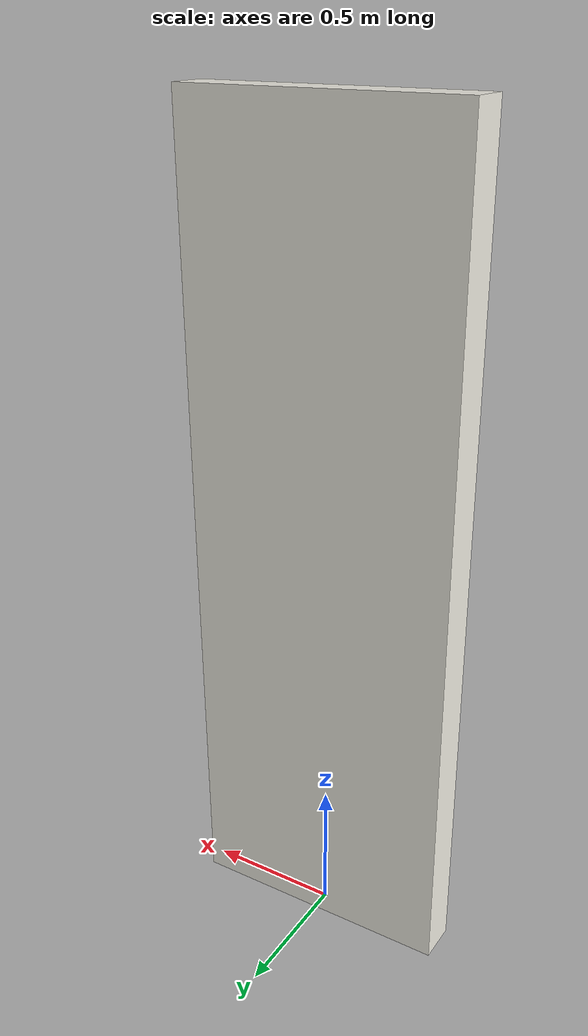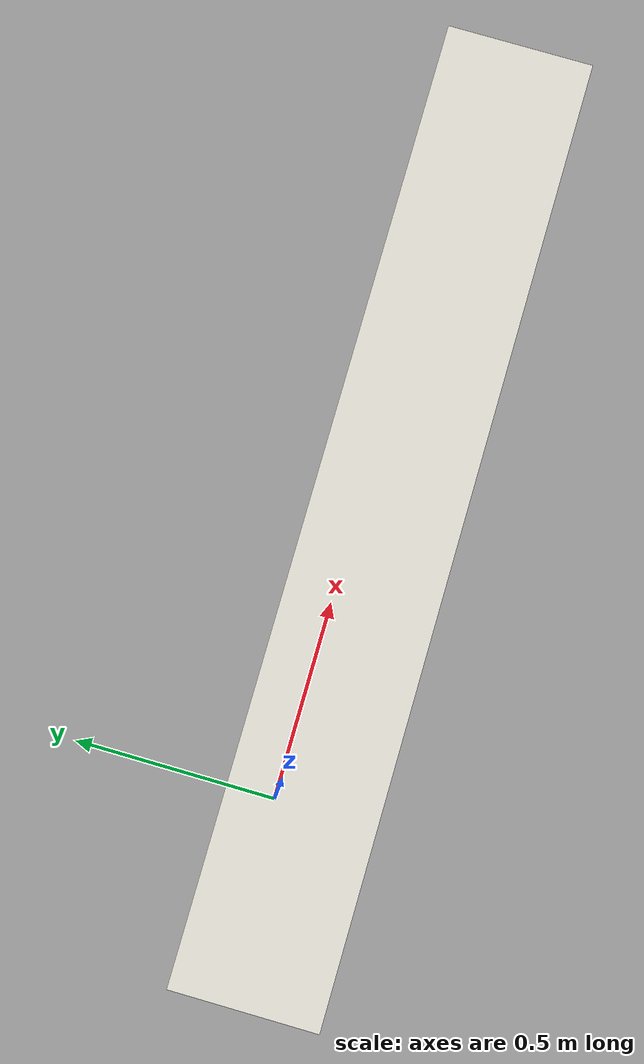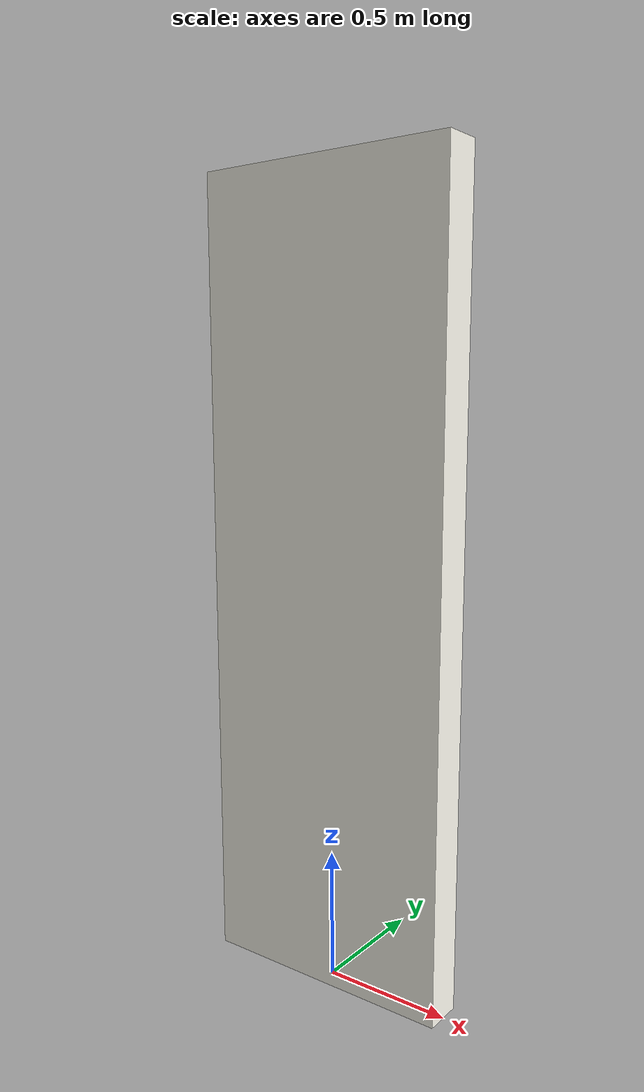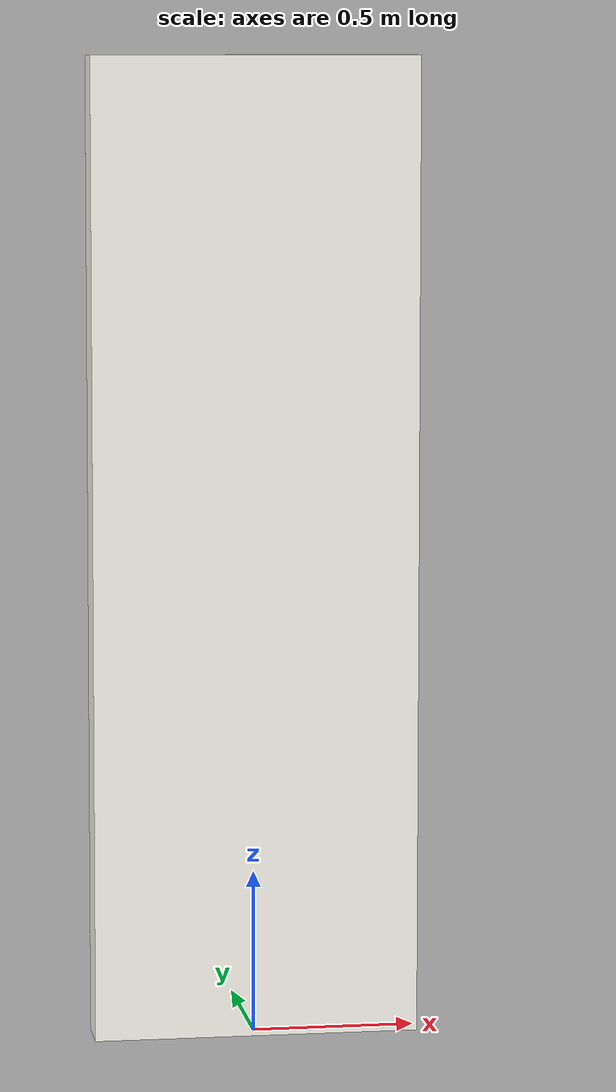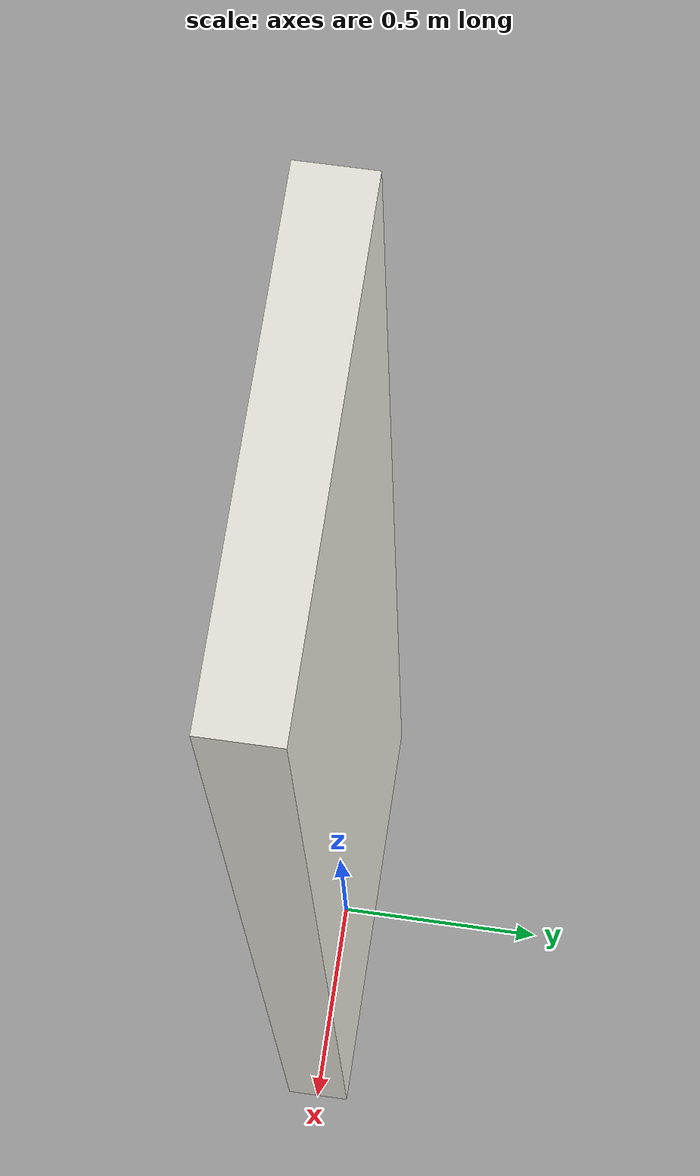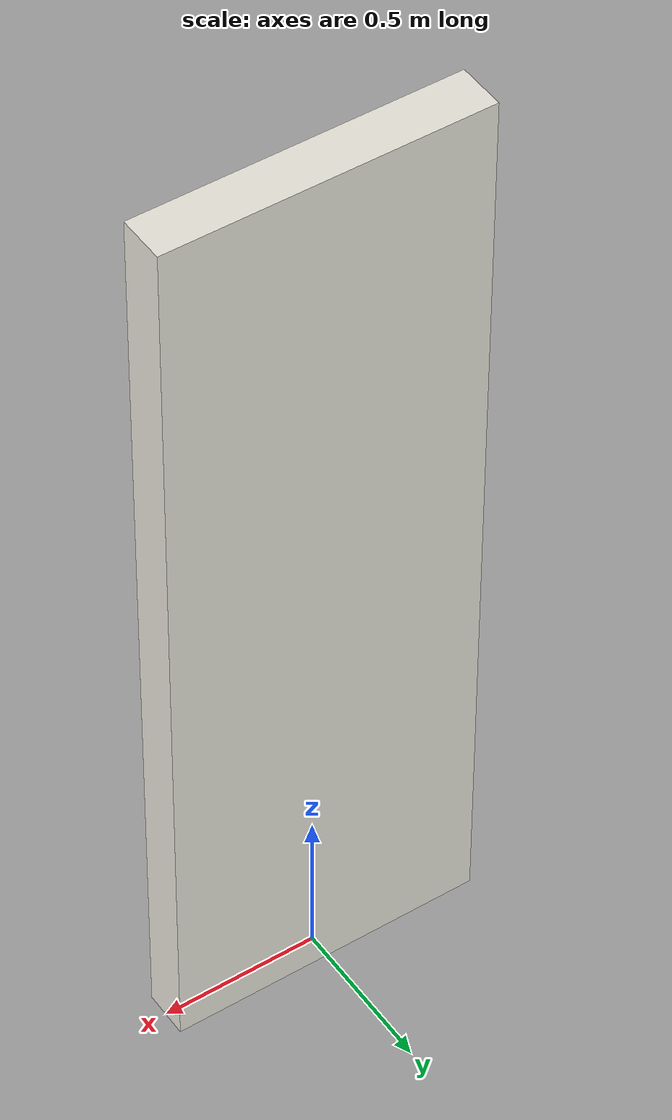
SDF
<?xml version="1.0" ?>
<sdf version="1.6">
  <model name="wall_segment">
    <static>true</static>

    <link name="wall_link">
      <!-- Lift the box so its bottom sits on the floor (half of 3.0 m). -->
      <pose>0 0 1.5 0 0 0</pose>

      <collision name="wall_collision">
        <geometry>
          <box>
            <size>1.0 0.15 3.0</size>
          </box>
        </geometry>
        <surface>
          <contact>
            <ode>
              <kp>1e7</kp>
              <kd>1.0</kd>
            </ode>
          </contact>
          <friction>
            <ode>
              <mu>0.8</mu>
              <mu2>0.8</mu2>
            </ode>
          </friction>
        </surface>
      </collision>

      <visual name="wall_visual">
        <geometry>
          <box>
            <size>1.0 0.15 3.0</size>
          </box>
        </geometry>
        <material>
          <!-- Premium warm off-white matte plaster -->
          <ambient>0.85 0.84 0.80 1</ambient>
          <diffuse>0.92 0.91 0.87 1</diffuse>
          <specular>0.05 0.05 0.05 1</specular>
          <emissive>0 0 0 1</emissive>
        </material>
      </visual>
    </link>
  </model>
</sdf>
